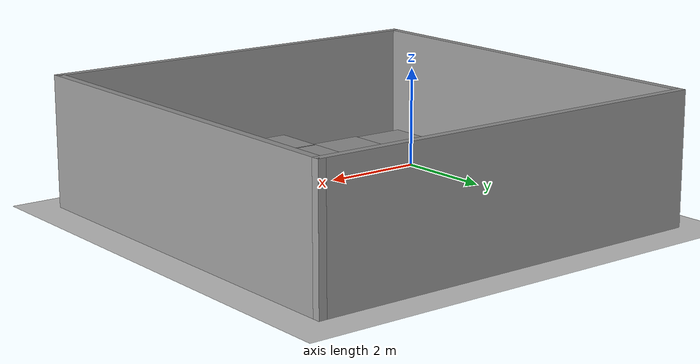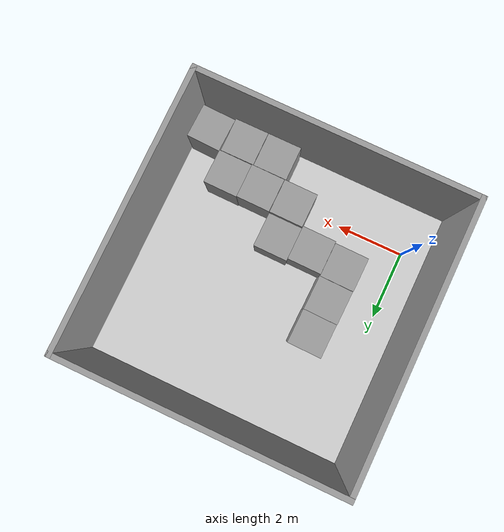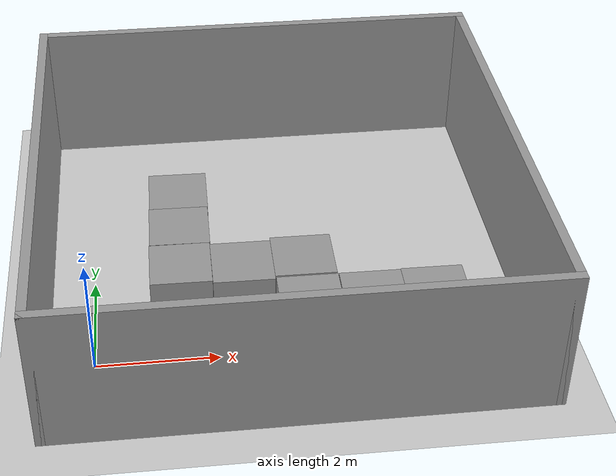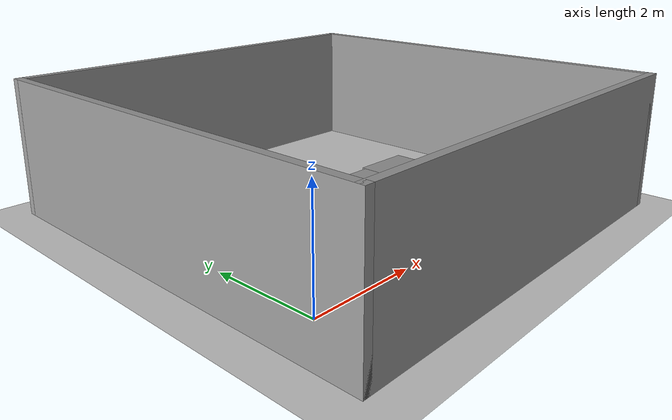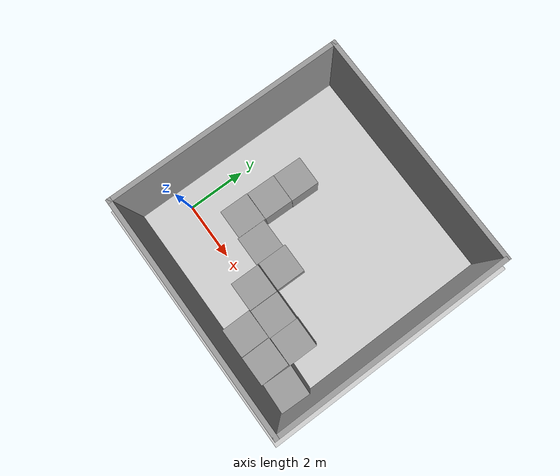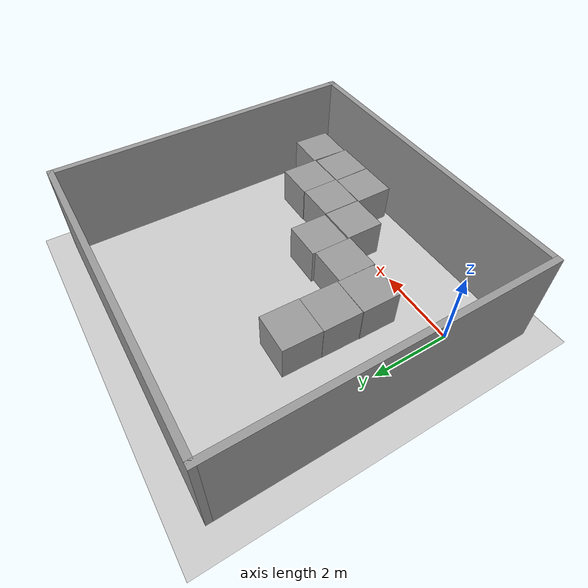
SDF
<sdf version="1.7">
 <world name="default">
  <light name="sun" type="directional">
   <pose>0 0 10 0 -0 0</pose>
   <diffuse>0.8 0.8 0.8 1</diffuse>
   <specular>0.2 0.2 0.2 1</specular>
   <attenuation>
    <range>1000</range>
    <constant>0.9</constant>
    <linear>0.01</linear>
    <quadratic>0.001</quadratic>
   </attenuation>
   <direction>-0.5 0.1 -0.9</direction>
   <spot><inner_angle>0</inner_angle><outer_angle>0</outer_angle><falloff>0</falloff></spot>
  </light>
  <model name="ground_plane">
   <static>1</static>
   <link name="link">
    <collision name="collision">
     <geometry><plane><normal>0 0 1</normal><size>100 100</size></plane></geometry>
     <surface>
      <contact><collide_bitmask>65535</collide_bitmask></contact>
      <friction><ode><mu>100</mu><mu2>50</mu2></ode></friction>
     </surface>
    </collision>
    <visual name="visual">
     <cast_shadows>0</cast_shadows>
     <geometry><plane><normal>0 0 1</normal><size>100 100</size></plane></geometry>
     <material>
      <script><uri>file://media/materials/scripts/gazebo.material</uri><name>Gazebo/Grey</name></script>
     </material>
    </visual>
   </link>
  </model>
  <gravity>0 0 -9.8</gravity>
  <magnetic_field>6e-06 2.3e-05 -4.2e-05</magnetic_field>
  <atmosphere type="adiabatic"/>
  <physics type="ode">
   <max_step_size>0.001</max_step_size>
   <real_time_factor>1</real_time_factor>
   <real_time_update_rate>1000</real_time_update_rate>
  </physics>
  <scene><ambient>0.4 0.4 0.4 1</ambient><background>0.7 0.7 0.7 1</background><shadows>1</shadows></scene>
  <spherical_coordinates>
   <surface_model>EARTH_WGS84</surface_model>
   <latitude_deg>0</latitude_deg>
   <longitude_deg>0</longitude_deg>
   <elevation>0</elevation>
   <heading_deg>0</heading_deg>
  </spherical_coordinates>
  <model name="my_room2">
   <pose>3.14277 2.39988 0 0 -0 0</pose>
   <link name="Wall_15">
    <collision name="Wall_15_Collision">
     <geometry><box><size>8 0.15 2.5</size></box></geometry>
     <pose>0 0 1.25 0 -0 0</pose>
    </collision>
    <visual name="Wall_15_Visual">
     <pose>0 0 1.25 0 -0 0</pose>
     <geometry><box><size>8 0.15 2.5</size></box></geometry>
     <material>
      <script><uri>file://media/materials/scripts/gazebo.material</uri><name>Gazebo/Grey</name></script>
      <ambient>1 1 1 1</ambient>
     </material>
     <meta><layer>0</layer></meta>
    </visual>
    <pose>-3.925 -0 0 0 -0 -1.5708</pose>
   </link>
   <link name="Wall_16">
    <collision name="Wall_16_Collision">
     <geometry><box><size>8 0.15 2.5</size></box></geometry>
     <pose>0 0 1.25 0 -0 0</pose>
    </collision>
    <visual name="Wall_16_Visual">
     <pose>0 0 1.25 0 -0 0</pose>
     <geometry><box><size>8 0.15 2.5</size></box></geometry>
     <material>
      <script><uri>file://media/materials/scripts/gazebo.material</uri><name>Gazebo/Grey</name></script>
      <ambient>1 1 1 1</ambient>
     </material>
     <meta><layer>0</layer></meta>
    </visual>
    <pose>-0 -3.925 0 0 -0 0</pose>
   </link>
   <link name="Wall_17">
    <collision name="Wall_17_Collision">
     <geometry><box><size>8 0.15 2.5</size></box></geometry>
     <pose>0 0 1.25 0 -0 0</pose>
    </collision>
    <visual name="Wall_17_Visual">
     <pose>0 0 1.25 0 -0 0</pose>
     <geometry><box><size>8 0.15 2.5</size></box></geometry>
     <material>
      <script><uri>file://media/materials/scripts/gazebo.material</uri><name>Gazebo/Grey</name></script>
      <ambient>1 1 1 1</ambient>
     </material>
     <meta><layer>0</layer></meta>
    </visual>
    <pose>3.925 -0 0 0 -0 1.5708</pose>
   </link>
   <link name="Wall_18">
    <collision name="Wall_18_Collision">
     <geometry><box><size>8 0.15 2.5</size></box></geometry>
     <pose>0 0 1.25 0 -0 0</pose>
    </collision>
    <visual name="Wall_18_Visual">
     <pose>0 0 1.25 0 -0 0</pose>
     <geometry><box><size>8 0.15 2.5</size></box></geometry>
     <material>
      <script><uri>file://media/materials/scripts/gazebo.material</uri><name>Gazebo/Grey</name></script>
      <ambient>1 1 1 1</ambient>
     </material>
     <meta><layer>0</layer></meta>
    </visual>
    <pose>-0 3.925 0 0 -0 3.14159</pose>
   </link>
   <static>1</static>
  </model>
  <model name="unit_box">
   <pose>6.43652 -0.794657 0.5 0 -0 -0.034003</pose>
   <link name="link">
    <inertial>
     <mass>1</mass>
     <inertia>
      <ixx>0.166667</ixx>
      <ixy>0</ixy>
      <ixz>0</ixz>
      <iyy>0.166667</iyy>
      <iyz>0</iyz>
      <izz>0.166667</izz>
     </inertia>
    </inertial>
    <collision name="collision"><geometry><box><size>1 1 1</size></box></geometry></collision>
    <visual name="visual">
     <geometry><box><size>1 1 1</size></box></geometry>
     <material>
      <script><name>Gazebo/Grey</name><uri>file://media/materials/scripts/gazebo.material</uri></script>
     </material>
    </visual>
   </link>
  </model>
  <model name="unit_box_0">
   <pose>5.41843 -0.823818 0.5 0 -0 0.002362</pose>
   <link name="link">
    <inertial>
     <mass>1</mass>
     <inertia>
      <ixx>0.166667</ixx>
      <ixy>0</ixy>
      <ixz>0</ixz>
      <iyy>0.166667</iyy>
      <iyz>0</iyz>
      <izz>0.166667</izz>
     </inertia>
    </inertial>
    <collision name="collision"><geometry><box><size>1 1 1</size></box></geometry></collision>
    <visual name="visual">
     <geometry><box><size>1 1 1</size></box></geometry>
     <material>
      <script><name>Gazebo/Grey</name><uri>file://media/materials/scripts/gazebo.material</uri></script>
     </material>
    </visual>
   </link>
  </model>
  <model name="unit_box_1">
   <pose>4.40922 -0.82551 0.5 0 -0 0.001895</pose>
   <link name="link">
    <inertial>
     <mass>1</mass>
     <inertia>
      <ixx>0.166667</ixx>
      <ixy>0</ixy>
      <ixz>0</ixz>
      <iyy>0.166667</iyy>
      <iyz>0</iyz>
      <izz>0.166667</izz>
     </inertia>
    </inertial>
    <collision name="collision"><geometry><box><size>1 1 1</size></box></geometry></collision>
    <visual name="visual">
     <geometry><box><size>1 1 1</size></box></geometry>
     <material>
      <script><name>Gazebo/Grey</name><uri>file://media/materials/scripts/gazebo.material</uri></script>
     </material>
    </visual>
   </link>
  </model>
  <model name="unit_box_2">
   <pose>5.4565 0.187145 0.5 0 0 -0.008003</pose>
   <link name="link">
    <inertial>
     <mass>1</mass>
     <inertia>
      <ixx>0.166667</ixx>
      <ixy>0</ixy>
      <ixz>0</ixz>
      <iyy>0.166667</iyy>
      <iyz>0</iyz>
      <izz>0.166667</izz>
     </inertia>
    </inertial>
    <collision name="collision"><geometry><box><size>1 1 1</size></box></geometry></collision>
    <visual name="visual">
     <geometry><box><size>1 1 1</size></box></geometry>
     <material>
      <script><name>Gazebo/Grey</name><uri>file://media/materials/scripts/gazebo.material</uri></script>
     </material>
    </visual>
   </link>
  </model>
  <model name="unit_box_3">
   <pose>4.4564 0.179075 0.5 -0 -0 -0.007995</pose>
   <link name="link">
    <inertial>
     <mass>1</mass>
     <inertia>
      <ixx>0.166667</ixx>
      <ixy>0</ixy>
      <ixz>0</ixz>
      <iyy>0.166667</iyy>
      <iyz>0</iyz>
      <izz>0.166667</izz>
     </inertia>
    </inertial>
    <collision name="collision"><geometry><box><size>1 1 1</size></box></geometry></collision>
    <visual name="visual">
     <geometry><box><size>1 1 1</size></box></geometry>
     <material>
      <script><name>Gazebo/Grey</name><uri>file://media/materials/scripts/gazebo.material</uri></script>
     </material>
    </visual>
   </link>
  </model>
  <model name="unit_box_4">
   <pose>3.44743 0.182708 0.499995 0 1e-05 -0.006956</pose>
   <link name="link">
    <inertial>
     <mass>1</mass>
     <inertia>
      <ixx>0.166667</ixx>
      <ixy>0</ixy>
      <ixz>0</ixz>
      <iyy>0.166667</iyy>
      <iyz>0</iyz>
      <izz>0.166667</izz>
     </inertia>
    </inertial>
    <collision name="collision"><geometry><box><size>1 1 1</size></box></geometry></collision>
    <visual name="visual">
     <geometry><box><size>1 1 1</size></box></geometry>
     <material>
      <script><name>Gazebo/Grey</name><uri>file://media/materials/scripts/gazebo.material</uri></script>
     </material>
    </visual>
   </link>
  </model>
  <model name="unit_box_5">
   <pose>3.44534 1.21448 0.499995 -1e-05 -0 -0.007246</pose>
   <link name="link">
    <inertial>
     <mass>1</mass>
     <inertia>
      <ixx>0.166667</ixx>
      <ixy>0</ixy>
      <ixz>0</ixz>
      <iyy>0.166667</iyy>
      <iyz>0</iyz>
      <izz>0.166667</izz>
     </inertia>
    </inertial>
    <collision name="collision"><geometry><box><size>1 1 1</size></box></geometry></collision>
    <visual name="visual">
     <geometry><box><size>1 1 1</size></box></geometry>
     <material>
      <script><name>Gazebo/Grey</name><uri>file://media/materials/scripts/gazebo.material</uri></script>
     </material>
    </visual>
   </link>
  </model>
  <model name="unit_box_6">
   <pose>2.44472 1.14994 0.499995 0 1e-05 -0.007253</pose>
   <link name="link">
    <inertial>
     <mass>1</mass>
     <inertia>
      <ixx>0.166667</ixx>
      <ixy>0</ixy>
      <ixz>0</ixz>
      <iyy>0.166667</iyy>
      <iyz>0</iyz>
      <izz>0.166667</izz>
     </inertia>
    </inertial>
    <collision name="collision"><geometry><box><size>1 1 1</size></box></geometry></collision>
    <visual name="visual">
     <geometry><box><size>1 1 1</size></box></geometry>
     <material>
      <script><name>Gazebo/Grey</name><uri>file://media/materials/scripts/gazebo.material</uri></script>
     </material>
    </visual>
   </link>
  </model>
  <model name="unit_box_7">
   <pose>1.49388 3.2084 0.5 0 0 -0.017098</pose>
   <link name="link">
    <inertial>
     <mass>1</mass>
     <inertia>
      <ixx>0.166667</ixx>
      <ixy>0</ixy>
      <ixz>0</ixz>
      <iyy>0.166667</iyy>
      <iyz>0</iyz>
      <izz>0.166667</izz>
     </inertia>
    </inertial>
    <collision name="collision"><geometry><box><size>1 1 1</size></box></geometry></collision>
    <visual name="visual">
     <geometry><box><size>1 1 1</size></box></geometry>
     <material>
      <script><name>Gazebo/Grey</name><uri>file://media/materials/scripts/gazebo.material</uri></script>
     </material>
    </visual>
   </link>
  </model>
  <model name="unit_box_8">
   <pose>1.44387 1.20517 0.499995 1e-05 0 -0.009846</pose>
   <link name="link">
    <inertial>
     <mass>1</mass>
     <inertia>
      <ixx>0.166667</ixx>
      <ixy>0</ixy>
      <ixz>0</ixz>
      <iyy>0.166667</iyy>
      <iyz>0</iyz>
      <izz>0.166667</izz>
     </inertia>
    </inertial>
    <collision name="collision"><geometry><box><size>1 1 1</size></box></geometry></collision>
    <visual name="visual">
     <geometry><box><size>1 1 1</size></box></geometry>
     <material>
      <script><name>Gazebo/Grey</name><uri>file://media/materials/scripts/gazebo.material</uri></script>
     </material>
    </visual>
   </link>
  </model>
  <model name="unit_box_9">
   <pose>1.4686 2.20857 0.499995 -0 1e-05 -0.017025</pose>
   <link name="link">
    <inertial>
     <mass>1</mass>
     <inertia>
      <ixx>0.166667</ixx>
      <ixy>0</ixy>
      <ixz>0</ixz>
      <iyy>0.166667</iyy>
      <iyz>0</iyz>
      <izz>0.166667</izz>
     </inertia>
    </inertial>
    <collision name="collision"><geometry><box><size>1 1 1</size></box></geometry></collision>
    <visual name="visual">
     <geometry><box><size>1 1 1</size></box></geometry>
     <material>
      <script><name>Gazebo/Grey</name><uri>file://media/materials/scripts/gazebo.material</uri></script>
     </material>
    </visual>
   </link>
  </model>
 </world>
</sdf>
